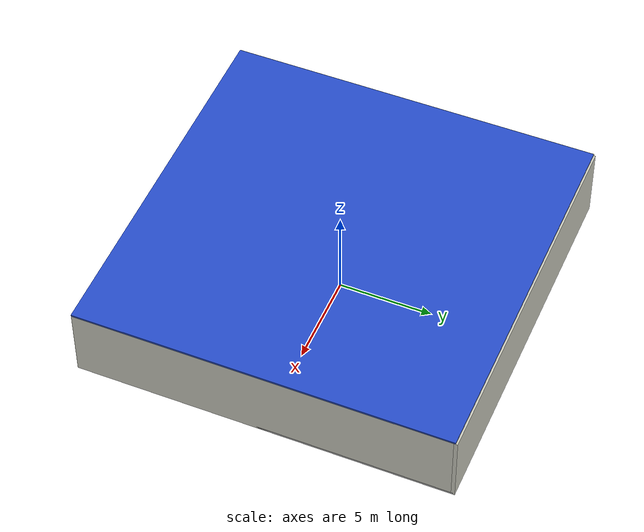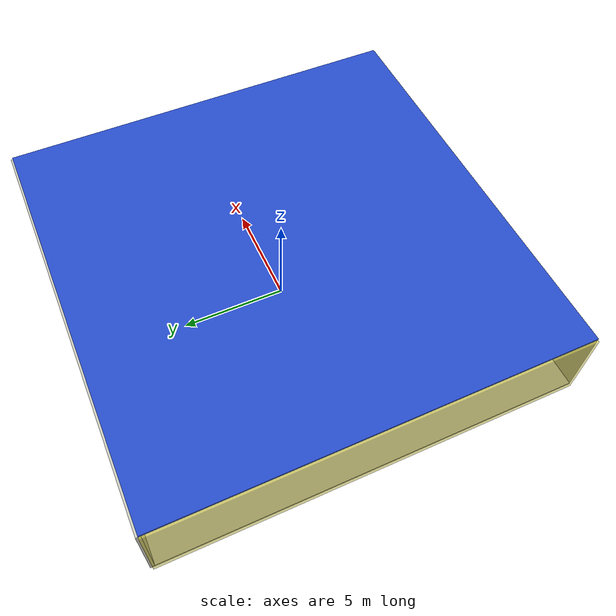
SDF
<sdf version="1.4">
 <world name="default">
  <physics type="ode">
   <max_step_size>0.001</max_step_size>
   <real_time_factor>1</real_time_factor>
   <real_time_update_rate>1000</real_time_update_rate>
   <gravity>0 0 -9.8</gravity>
  </physics>
  <scene><ambient>0.4 0.4 0.4 1</ambient><background>0.7 0.7 0.7 1</background><shadows>1</shadows></scene>
  <model name="Surrounding">
   <static>1</static>
   <link name="Ceiling">
    <collision name="Ceiling_Collision"><geometry><box><size>20 20 0.1</size></box></geometry></collision>
    <visual name="Ceiling_Visual">
     <geometry><box><size>20 20 0.1</size></box></geometry>
     <material>
      <script><uri>file://media/materials/scripts/gazebo.material</uri><name>Gazebo/BlueLaser</name></script>
     </material>
    </visual>
    <pose>0 0 4.05 0 0 0</pose>
   </link>
   <link name="Wall_South">
    <collision name="Wall_South_Collision">
     <geometry><box><size>20 0 4</size></box></geometry>
     <pose>0 0 2 0 -0 0</pose>
    </collision>
    <visual name="Wall_South_Visual">
     <pose>0 0 2 0 -0 0</pose>
     <geometry><box><size>20 0 4</size></box></geometry>
     <material>
      <script><uri>file://media/materials/scripts/gazebo.material</uri><name>Gazebo/PioneerBody</name></script>
     </material>
    </visual>
    <velocity_decay><linear>0</linear><angular>0</angular></velocity_decay>
    <pose>0 -10 0 0 -0 0</pose>
   </link>
   <link name="Wall_East">
    <collision name="Wall_21_Collision">
     <geometry><box><size>20 0 4</size></box></geometry>
     <pose>0 0 2 0 -0 0</pose>
    </collision>
    <visual name="Wall_21_Visual">
     <pose>0 0 2 0 -0 0</pose>
     <geometry><box><size>20 0 4</size></box></geometry>
     <material>
      <script><uri>file://media/materials/scripts/gazebo.material</uri><name>Gazebo/PaintedWall</name></script>
     </material>
    </visual>
    <velocity_decay><linear>0</linear><angular>0</angular></velocity_decay>
    <pose>10 0 0 0 -0 1.5708</pose>
   </link>
   <link name="Wall_North">
    <collision name="Wall_22_Collision">
     <geometry><box><size>20 0.2 4</size></box></geometry>
     <pose>0 0 2 0 -0 0</pose>
    </collision>
    <visual name="Wall_22_Visual">
     <pose>0 0 2 0 -0 0</pose>
     <geometry><box><size>20 0.2 4</size></box></geometry>
     <material>
      <script><uri>file://media/materials/scripts/gazebo.material</uri><name>Gazebo/PaintedWall</name></script>
     </material>
    </visual>
    <velocity_decay><linear>0</linear><angular>0</angular></velocity_decay>
    <pose>0 10 0 0 -0 0</pose>
   </link>
   <link name="Wall_West">
    <collision name="Wall_23_Collision">
     <geometry><box><size>20 0.2 4</size></box></geometry>
     <pose>0 0 2 0 -0 0</pose>
    </collision>
    <visual name="Wall_23_Visual">
     <pose>0 0 2 0 -0 0</pose>
     <geometry><box><size>20 0.2 4</size></box></geometry>
     <material>
      <script>
       <uri>file://media/materials/scripts/gazebo.material</uri>
       <name>Gazebo/YellowTransparent</name>
      </script>
     </material>
    </visual>
    <velocity_decay><linear>0</linear><angular>0</angular></velocity_decay>
    <pose>-10 0 0 0 0 -1.5708</pose>
   </link>
   <link name="Ground_link">
    <collision name="collision">
     <pose>0 0 .05 0 -0 0</pose>
     <geometry><box><size>20 20 0.1</size></box></geometry>
    </collision>
    <visual name="visual">
     <pose>0 0 .05 0 -0 0</pose>
     <geometry><box><size>20 20 0.1</size></box></geometry>
     <material>
      <script><uri>file://media/materials/scripts/gazebo.material</uri><name>Gazebo/PioneerBody</name></script>
     </material>
    </visual>
   </link>
   <static>1</static>
  </model>
  <spherical_coordinates>
   <surface_model>EARTH_WGS84</surface_model>
   <latitude_deg>0</latitude_deg>
   <longitude_deg>0</longitude_deg>
   <elevation>0</elevation>
   <heading_deg>0</heading_deg>
  </spherical_coordinates>
  <light name="lightball_0" type="diffuse">
   <diffuse>0.8 0.8 0.8 1</diffuse>
   <specular>0.2 0.2 0.2 1</specular>
   <attenuation>
    <range>100</range>
    <constant>0.7</constant>
    <linear>0.01</linear>
    <quadratic>0.001</quadratic>
   </attenuation>
   <direction>-0.5 0.1 -0.9</direction>
   <pose>-8.68426679104 3.44744541336 0.658713064093 0 0 0</pose>
  </light>
  <light name="lightball_1" type="diffuse">
   <diffuse>0.8 0.8 0.8 1</diffuse>
   <specular>0.2 0.2 0.2 1</specular>
   <attenuation>
    <range>100</range>
    <constant>0.7</constant>
    <linear>0.01</linear>
    <quadratic>0.001</quadratic>
   </attenuation>
   <direction>-0.5 0.1 -0.9</direction>
   <pose>3.85283024168 -7.99615184916 2.88458248979 0 0 0</pose>
  </light>
  <light name="lightball_2" type="diffuse">
   <diffuse>0.8 0.8 0.8 1</diffuse>
   <specular>0.2 0.2 0.2 1</specular>
   <attenuation>
    <range>100</range>
    <constant>0.7</constant>
    <linear>0.01</linear>
    <quadratic>0.001</quadratic>
   </attenuation>
   <direction>-0.5 0.1 -0.9</direction>
   <pose>-2.09283979602 -0.980125568841 1.14083817537 0 0 0</pose>
  </light>
  <light name="lightball_3" type="diffuse">
   <diffuse>0.8 0.8 0.8 1</diffuse>
   <specular>0.2 0.2 0.2 1</specular>
   <attenuation>
    <range>100</range>
    <constant>0.7</constant>
    <linear>0.01</linear>
    <quadratic>0.001</quadratic>
   </attenuation>
   <direction>-0.5 0.1 -0.9</direction>
   <pose>6.92235847734 3.06964188204 1.30905950153 0 0 0</pose>
  </light>
  <light name="lightball_4" type="diffuse">
   <diffuse>0.8 0.8 0.8 1</diffuse>
   <specular>0.2 0.2 0.2 1</specular>
   <attenuation>
    <range>100</range>
    <constant>0.7</constant>
    <linear>0.01</linear>
    <quadratic>0.001</quadratic>
   </attenuation>
   <direction>-0.5 0.1 -0.9</direction>
   <pose>-4.28653297534 1.37250121114 1.63109984544 0 0 0</pose>
  </light>
  <light name="lightball_5" type="diffuse">
   <diffuse>0.8 0.8 0.8 1</diffuse>
   <specular>0.2 0.2 0.2 1</specular>
   <attenuation>
    <range>100</range>
    <constant>0.7</constant>
    <linear>0.01</linear>
    <quadratic>0.001</quadratic>
   </attenuation>
   <direction>-0.5 0.1 -0.9</direction>
   <pose>1.1372606372 -5.59259844895 2.04505547935 0 0 0</pose>
  </light>
  <include>
   <uri>model://construction_cone</uri>
   <pose>-2.28023434912 7.84063026971 0 0 0 0.154232160764</pose>
  </include>
  <include>
   <uri>model://robocup_3Dsim_goal</uri>
   <pose>2.04892289562 -1.79760142733 0 0 0 1.76965506497</pose>
  </include>
  <include>
   <uri>model://textured_shapes</uri>
   <pose>1.25002863479 4.17456481981 0 0 0 0.429582616256</pose>
  </include>
 </world>
</sdf>

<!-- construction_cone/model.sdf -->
<sdf version="1.5">
  <model name="Construction Cone">
    <link name="link">
      <collision name="collision">
        <geometry>
          <mesh>
            <scale>10 10 10</scale>
            <uri>file://isr-testbed/construction_cone/meshes/construction_cone.dae</uri>
          </mesh>
        </geometry>
      </collision>
      <visual name="visual">
        <geometry>
          <mesh>
            <scale>10 10 10</scale>
            <uri>file://isr-testbed/construction_cone/meshes/construction_cone.dae</uri>
          </mesh>
        </geometry>
      </visual>
    </link>
  </model>
</sdf>

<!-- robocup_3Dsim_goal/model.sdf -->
<sdf version="1.5">
  <model name="robocup_3d_goal">
    <static>true</static>
    <link name="left_post">
      <pose>0 1.05 0.45 0 0 0</pose>
      <collision name="collision">
        <geometry>
          <cylinder>
            <radius>0.05</radius>
            <length>0.9</length>
          </cylinder>
        </geometry>
      </collision>
      <visual name="visual">
        <geometry>
          <cylinder>
            <radius>0.05</radius>
            <length>0.9</length>
          </cylinder>
        </geometry>
        <material>
          <script>
            <uri>file://media/materials/scripts/gazebo.material</uri>
            <name>Gazebo/ZincYellow</name>
          </script>
        </material>
      </visual>
    </link>
    <link name="left_support_horiz_lower">
      <pose>0.30 1.05 0.01 0 0 0</pose>
      <collision name="collision">
        <geometry>
          <box>
            <size>0.50 0.02 0.02</size>
          </box>
        </geometry>
      </collision>
      <visual name="visual">
        <geometry>
          <box>
            <size>0.50 0.02 0.02</size>
          </box>
        </geometry>
        <material>
          <script>
            <uri>file://media/materials/scripts/gazebo.material</uri>
            <name>Gazebo/White</name>
          </script>
        </material>
      </visual>
    </link>
    <link name="left_support_horiz_upper">
      <pose>0.30 1.05 0.79 0 0 0</pose>
      <collision name="collision">
        <geometry>
          <box>
            <size>0.50 0.02 0.02</size>
          </box>
        </geometry>
      </collision>
      <visual name="visual">
        <geometry>
          <box>
            <size>0.50 0.02 0.02</size>
          </box>
        </geometry>
        <material>
          <script>
            <uri>file://media/materials/scripts/gazebo.material</uri>
            <name>Gazebo/White</name>
          </script>
        </material>
      </visual>
    </link>
    <link name="left_support_vertical">
      <pose>0.56 1.05 0.4 0 1.5708 0</pose>
      <collision name="collision">
        <geometry>
          <box>
            <size>0.80 0.02 0.02</size>
          </box>
        </geometry>
      </collision>
      <visual name="visual">
        <geometry>
          <box>
            <size>0.80 0.02 0.02</size>
          </box>
        </geometry>
        <material>
          <script>
            <uri>file://media/materials/scripts/gazebo.material</uri>
            <name>Gazebo/White</name>
          </script>
        </material>
      </visual>
    </link>
    <link name="right_support_horiz_lower">
      <pose>0.30 -1.05 0.01 0 0 0</pose>
      <collision name="collision">
        <geometry>
          <box>
            <size>0.50 0.02 0.02</size>
          </box>
        </geometry>
      </collision>
      <visual name="visual">
        <geometry>
          <box>
            <size>0.50 0.02 0.02</size>
          </box>
        </geometry>
        <material>
          <script>
            <uri>file://media/materials/scripts/gazebo.material</uri>
            <name>Gazebo/White</name>
          </script>
        </material>
      </visual>
    </link>
    <link name="right_support_horiz_upper">
      <pose>0.30 -1.05 0.79 0 0 0</pose>
      <collision name="collision">
        <geometry>
          <box>
            <size>0.50 0.02 0.02</size>
          </box>
        </geometry>
      </collision>
      <visual name="visual">
        <geometry>
          <box>
            <size>0.50 0.02 0.02</size>
          </box>
        </geometry>
        <material>
          <script>
            <uri>file://media/materials/scripts/gazebo.material</uri>
            <name>Gazebo/White</name>
          </script>
        </material>
      </visual>
    </link>
    <link name="right_support_vertical">
      <pose>0.56 -1.05 0.4 0 1.5708 0</pose>
      <collision name="collision">
        <geometry>
          <box>
            <size>0.80 0.02 0.02</size>
          </box>
        </geometry>
      </collision>
      <visual name="visual">
        <geometry>
          <box>
            <size>0.80 0.02 0.02</size>
          </box>
        </geometry>
        <material>
          <script>
            <uri>file://media/materials/scripts/gazebo.material</uri>
            <name>Gazebo/White</name>
          </script>
        </material>
      </visual>
    </link>
    <link name="center_support_horiz_lower">
      <pose>0.56 0 0.01 0 1.5708 0</pose>
      <collision name="collision">
        <geometry>
          <box>
            <size>0.02 2.08 0.02</size>
          </box>
        </geometry>
      </collision>
      <visual name="visual">
        <geometry>
          <box>
            <size>0.02 2.08 0.02</size>
          </box>
        </geometry>
        <material>
          <script>
            <uri>file://media/materials/scripts/gazebo.material</uri>
            <name>Gazebo/White</name>
          </script>
        </material>
      </visual>
    </link>
    <link name="center_support_horiz_upper">
      <pose>0.56 0 0.79 0 1.5708 0</pose>
      <collision name="collision">
        <geometry>
          <box>
            <size>0.02 2.08 0.02</size>
          </box>
        </geometry>
      </collision>
      <visual name="visual">
        <geometry>
          <box>
            <size>0.02 2.08 0.02</size>
          </box>
        </geometry>
        <material>
          <script>
            <uri>file://media/materials/scripts/gazebo.material</uri>
            <name>Gazebo/White</name>
          </script>
        </material>
      </visual>
    </link>
    <link name="right_post">
      <pose>0 -1.05 0.45 0 0 0</pose>
      <collision name="collision">
        <geometry>
          <cylinder>
            <radius>0.05</radius>
            <length>0.9</length>
          </cylinder>
        </geometry>
      </collision>
      <visual name="visual">
        <geometry>
          <cylinder>
            <radius>0.05</radius>
            <length>0.9</length>
          </cylinder>
        </geometry>
        <material>
          <script>
            <uri>file://media/materials/scripts/gazebo.material</uri>
            <name>Gazebo/ZincYellow</name>
          </script>
        </material>
      </visual>
    </link>
    <link name="crossbar">
      <pose>0 0 0.85 1.57 1.57 0</pose>
      <collision name="collision">
        <geometry>
          <cylinder>
            <radius>0.05</radius>
            <length>2.0</length>
          </cylinder>
        </geometry>
      </collision>
      <visual name="visual">
        <geometry>
          <cylinder>
            <radius>0.05</radius>
            <length>2.0</length>
          </cylinder>
        </geometry>
        <material>
          <script>
            <uri>file://media/materials/scripts/gazebo.material</uri>
            <name>Gazebo/ZincYellow</name>
          </script>
        </material>
      </visual>
    </link>
    <link name="center_net">
      <pose>0.56 0 0.40 0 0 0</pose>
      <collision name="collision">
        <geometry>
          <box>
            <size>0.01 2.1 0.80</size>
          </box>
        </geometry>
      </collision>
      <visual name="visual">
        <geometry>
          <box>
            <size>0.01 2.1 0.80</size>
          </box>
        </geometry>
        <material>
          <script>
            <uri>model://../model_source/models/robocup09_spl_field/materials/scripts/</uri>
            <uri>model://../model_source/models/robocup09_spl_field/materials/textures/</uri>
            <name>RoboCup/Net</name>
          </script>
        </material>
      </visual>
    </link>
    <link name="left_net">
      <pose>0.30 1.05 0.40 0 0 0</pose>
      <collision name="collision">
        <geometry>
          <box>
            <size>0.50 0.01 0.76</size>
          </box>
        </geometry>
      </collision>
      <visual name="visual">
        <geometry>
          <box>
            <size>0.50 0.01 0.76</size>
          </box>
        </geometry>
        <material>
          <script>
            <uri>model://../model_source/models/robocup09_spl_field/materials/scripts/</uri>
            <uri>model://../model_source/models/robocup09_spl_field/materials/textures/</uri>
            <name>RoboCup/Net</name>
          </script>
        </material>
      </visual>
    </link>
    <link name="right_net">
      <pose>0.30 -1.05 0.40 0 0 0</pose>
      <collision name="collision">
        <geometry>
          <box>
            <size>0.50 0.01 0.76</size>
          </box>
        </geometry>
      </collision>
      <visual name="visual">
        <geometry>
          <box>
            <size>0.50 0.01 0.76</size>
          </box>
        </geometry>
        <material>
          <script>
            <uri>model://../model_source/models/robocup09_spl_field/materials/scripts/</uri>
            <uri>model://../model_source/models/robocup09_spl_field/materials/textures/</uri>
            <name>RoboCup/Net</name>
          </script>
        </material>
      </visual>
    </link>
  </model>
</sdf>

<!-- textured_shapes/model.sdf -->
<sdf version="1.6">
  <model name="textured_shapes">
    <pose>0 0 0.5 0 0 0</pose>
    <link name="box">
      <pose>0 -1.5 0 0 0 0</pose>
      <collision name="collision">
        <geometry>
          <box>
            <size>1 1 1</size>
          </box>
        </geometry>
      </collision>
      <visual name="visual">
        <geometry>
          <box>
            <size>1 1 1</size>
          </box>
        </geometry>
        <material>
          <script>
            <uri>model://../model_source/models/textured_shapes/materials/scripts</uri>
            <uri>model://../model_source/models/textured_shapes/materials/textures</uri>
            <name>TexturedShape/Squares</name>
          </script>
        </material>
      </visual>
    </link>
    <link name="sphere">
      <collision name="collision">
        <geometry>
          <sphere>
            <radius>0.5</radius>
          </sphere>
        </geometry>
      </collision>
      <visual name="visual">
        <geometry>
          <sphere>
            <radius>0.5</radius>
          </sphere>
        </geometry>
        <material>
          <script>
            <uri>model://../model_source/models/textured_shapes/materials/scripts</uri>
            <uri>model://../model_source/models/textured_shapes/materials/textures</uri>
            <name>TexturedShape/Squares</name>
          </script>
        </material>
      </visual>
    </link>
    <link name="cylinder">
      <pose>0 1.5 0 0 0 0</pose>
      <collision name="collision">
        <geometry>
          <cylinder>
            <radius>0.5</radius>
            <length>1</length>
          </cylinder>
        </geometry>
      </collision>
      <visual name="visual">
        <geometry>
          <cylinder>
            <radius>0.5</radius>
            <length>1</length>
          </cylinder>
        </geometry>
        <material>
          <script>
            <uri>model://../model_source/models/textured_shapes/materials/scripts</uri>
            <uri>model://../model_source/models/textured_shapes/materials/textures</uri>
            <name>TexturedShape/Squares</name>
          </script>
        </material>
      </visual>
    </link>
  </model>
</sdf>
